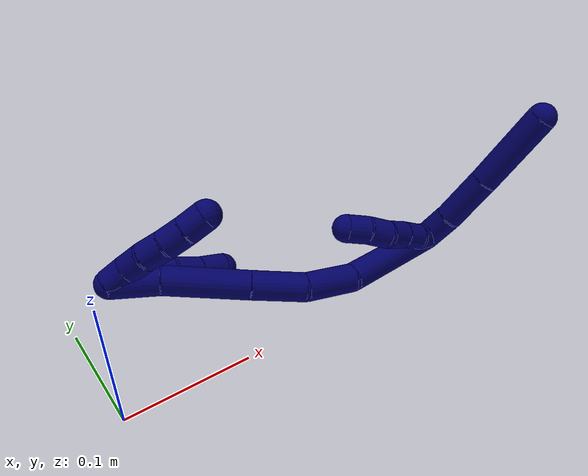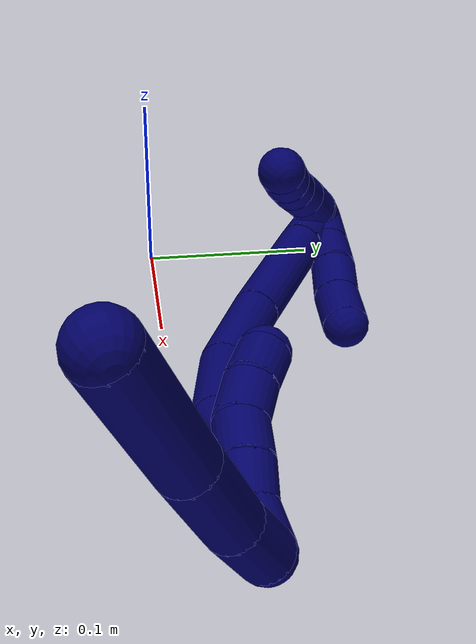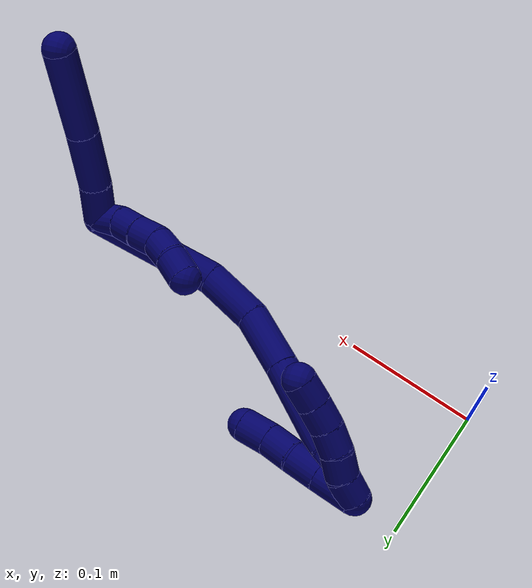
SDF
<sdf version="1.7">
 <world name="default">
  <model name="7">
   <static>0</static>
   <link name="7">
    <collision name="collision-cylinder-e_1_2_8">
     <pose>0.012578 -0.009112 0.001066 1.45431 0.940625 0.849601</pose>
     <geometry><cylinder><radius>0.0125</radius><length>0.031136</length></cylinder></geometry>
     <surface>
      <friction><ode><mu>1.16</mu><mu2>1.16</mu2><slip1>0</slip1><slip2>0</slip2></ode></friction>
      <contact><ode><kp>1e+06</kp><kd>1</kd><max_vel>0</max_vel><min_depth>0.001</min_depth></ode></contact>
     </surface>
    </collision>
    <visual name="visual-cylinder-e_1_2_8">
     <pose>0.012578 -0.009112 0.001066 1.45431 0.940625 0.849601</pose>
     <geometry><cylinder><radius>0.0125</radius><length>0.031136</length></cylinder></geometry>
     <material><ambient>0.003922 0 0.403922 1</ambient></material>
    </visual>
    <collision name="collision-cylinder-e_2_8_9">
     <pose>0.042849 -0.033729 0.00466 1.4092 0.8447 0.729906</pose>
     <geometry><cylinder><radius>0.0125</radius><length>0.047323</length></cylinder></geometry>
     <surface>
      <friction><ode><mu>1.16</mu><mu2>1.16</mu2><slip1>0</slip1><slip2>0</slip2></ode></friction>
      <contact><ode><kp>1e+06</kp><kd>1</kd><max_vel>0</max_vel><min_depth>0.001</min_depth></ode></contact>
     </surface>
    </collision>
    <visual name="visual-cylinder-e_2_8_9">
     <pose>0.042849 -0.033729 0.00466 1.4092 0.8447 0.729906</pose>
     <geometry><cylinder><radius>0.0125</radius><length>0.047323</length></cylinder></geometry>
     <material><ambient>0.003922 0 0.403922 1</ambient></material>
    </visual>
    <collision name="collision-cylinder-e_3_9_6">
     <pose>0.086575 -0.073394 0.011447 1.39629 0.815068 0.695094</pose>
     <geometry><cylinder><radius>0.0125</radius><length>0.071541</length></cylinder></geometry>
     <surface>
      <friction><ode><mu>1.16</mu><mu2>1.16</mu2><slip1>0</slip1><slip2>0</slip2></ode></friction>
      <contact><ode><kp>1e+06</kp><kd>1</kd><max_vel>0</max_vel><min_depth>0.001</min_depth></ode></contact>
     </surface>
    </collision>
    <visual name="visual-cylinder-e_3_9_6">
     <pose>0.086575 -0.073394 0.011447 1.39629 0.815068 0.695094</pose>
     <geometry><cylinder><radius>0.0125</radius><length>0.071541</length></cylinder></geometry>
     <material><ambient>0.003922 0 0.403922 1</ambient></material>
    </visual>
    <collision name="collision-cylinder-e_1_2_10">
     <pose>0.000664 -0.002021 -0.009771 2.93764 0.066496 0.628515</pose>
     <geometry><cylinder><radius>0.0125</radius><length>0.02</length></cylinder></geometry>
     <surface>
      <friction><ode><mu>1.16</mu><mu2>1.16</mu2><slip1>0</slip1><slip2>0</slip2></ode></friction>
      <contact><ode><kp>1e+06</kp><kd>1</kd><max_vel>0</max_vel><min_depth>0.001</min_depth></ode></contact>
     </surface>
    </collision>
    <visual name="visual-cylinder-e_1_2_10">
     <pose>0.000664 -0.002021 -0.009771 2.93764 0.066496 0.628515</pose>
     <geometry><cylinder><radius>0.0125</radius><length>0.02</length></cylinder></geometry>
     <material><ambient>0.003922 0 0.403922 1</ambient></material>
    </visual>
    <collision name="collision-cylinder-e_2_10_11">
     <pose>-0.000469 -0.007331 -0.028813 2.80069 -0.180788 -0.969421</pose>
     <geometry><cylinder><radius>0.0125</radius><length>0.02</length></cylinder></geometry>
     <surface>
      <friction><ode><mu>1.16</mu><mu2>1.16</mu2><slip1>0</slip1><slip2>0</slip2></ode></friction>
      <contact><ode><kp>1e+06</kp><kd>1</kd><max_vel>0</max_vel><min_depth>0.001</min_depth></ode></contact>
     </surface>
    </collision>
    <visual name="visual-cylinder-e_2_10_11">
     <pose>-0.000469 -0.007331 -0.028813 2.80069 -0.180788 -0.969421</pose>
     <geometry><cylinder><radius>0.0125</radius><length>0.02</length></cylinder></geometry>
     <material><ambient>0.003922 0 0.403922 1</ambient></material>
    </visual>
    <collision name="collision-cylinder-e_3_11_12">
     <pose>-0.003793 -0.013093 -0.047653 2.88865 -0.153183 -1.08604</pose>
     <geometry><cylinder><radius>0.0125</radius><length>0.02</length></cylinder></geometry>
     <surface>
      <friction><ode><mu>1.16</mu><mu2>1.16</mu2><slip1>0</slip1><slip2>0</slip2></ode></friction>
      <contact><ode><kp>1e+06</kp><kd>1</kd><max_vel>0</max_vel><min_depth>0.001</min_depth></ode></contact>
     </surface>
    </collision>
    <visual name="visual-cylinder-e_3_11_12">
     <pose>-0.003793 -0.013093 -0.047653 2.88865 -0.153183 -1.08604</pose>
     <geometry><cylinder><radius>0.0125</radius><length>0.02</length></cylinder></geometry>
     <material><ambient>0.003922 0 0.403922 1</ambient></material>
    </visual>
    <collision name="collision-cylinder-e_4_12_13">
     <pose>-0.009565 -0.019438 -0.065405 2.6997 -0.438542 -1.56293</pose>
     <geometry><cylinder><radius>0.0125</radius><length>0.02</length></cylinder></geometry>
     <surface>
      <friction><ode><mu>1.16</mu><mu2>1.16</mu2><slip1>0</slip1><slip2>0</slip2></ode></friction>
      <contact><ode><kp>1e+06</kp><kd>1</kd><max_vel>0</max_vel><min_depth>0.001</min_depth></ode></contact>
     </surface>
    </collision>
    <visual name="visual-cylinder-e_4_12_13">
     <pose>-0.009565 -0.019438 -0.065405 2.6997 -0.438542 -1.56293</pose>
     <geometry><cylinder><radius>0.0125</radius><length>0.02</length></cylinder></geometry>
     <material><ambient>0.003922 0 0.403922 1</ambient></material>
    </visual>
    <collision name="collision-cylinder-e_5_13_5">
     <pose>-0.019485 -0.025961 -0.081385 2.81381 -0.603305 -2.16454</pose>
     <geometry><cylinder><radius>0.0125</radius><length>0.02</length></cylinder></geometry>
     <surface>
      <friction><ode><mu>1.16</mu><mu2>1.16</mu2><slip1>0</slip1><slip2>0</slip2></ode></friction>
      <contact><ode><kp>1e+06</kp><kd>1</kd><max_vel>0</max_vel><min_depth>0.001</min_depth></ode></contact>
     </surface>
    </collision>
    <visual name="visual-cylinder-e_5_13_5">
     <pose>-0.019485 -0.025961 -0.081385 2.81381 -0.603305 -2.16454</pose>
     <geometry><cylinder><radius>0.0125</radius><length>0.02</length></cylinder></geometry>
     <material><ambient>0.003922 0 0.403922 1</ambient></material>
    </visual>
    <collision name="collision-cylinder-e_1_2_14">
     <pose>-0.011606 0.007094 -0.046825 -2.99123 -0.240324 2.02609</pose>
     <geometry><cylinder><radius>0.0125</radius><length>0.097521</length></cylinder></geometry>
     <surface>
      <friction><ode><mu>1.16</mu><mu2>1.16</mu2><slip1>0</slip1><slip2>0</slip2></ode></friction>
      <contact><ode><kp>1e+06</kp><kd>1</kd><max_vel>0</max_vel><min_depth>0.001</min_depth></ode></contact>
     </surface>
    </collision>
    <visual name="visual-cylinder-e_1_2_14">
     <pose>-0.011606 0.007094 -0.046825 -2.99123 -0.240324 2.02609</pose>
     <geometry><cylinder><radius>0.0125</radius><length>0.097521</length></cylinder></geometry>
     <material><ambient>0.003922 0 0.403922 1</ambient></material>
    </visual>
    <collision name="collision-cylinder-e_2_14_15">
     <pose>-0.033024 0.012973 -0.113492 3.08044 -0.458532 -2.88093</pose>
     <geometry><cylinder><radius>0.0125</radius><length>0.044338</length></cylinder></geometry>
     <surface>
      <friction><ode><mu>1.16</mu><mu2>1.16</mu2><slip1>0</slip1><slip2>0</slip2></ode></friction>
      <contact><ode><kp>1e+06</kp><kd>1</kd><max_vel>0</max_vel><min_depth>0.001</min_depth></ode></contact>
     </surface>
    </collision>
    <visual name="visual-cylinder-e_2_14_15">
     <pose>-0.033024 0.012973 -0.113492 3.08044 -0.458532 -2.88093</pose>
     <geometry><cylinder><radius>0.0125</radius><length>0.044338</length></cylinder></geometry>
     <material><ambient>0.003922 0 0.403922 1</ambient></material>
    </visual>
    <collision name="collision-cylinder-e_3_15_16">
     <pose>-0.05712 0.006192 -0.150861 2.8341 -0.660352 -2.29226</pose>
     <geometry><cylinder><radius>0.0125</radius><length>0.046571</length></cylinder></geometry>
     <surface>
      <friction><ode><mu>1.16</mu><mu2>1.16</mu2><slip1>0</slip1><slip2>0</slip2></ode></friction>
      <contact><ode><kp>1e+06</kp><kd>1</kd><max_vel>0</max_vel><min_depth>0.001</min_depth></ode></contact>
     </surface>
    </collision>
    <visual name="visual-cylinder-e_3_15_16">
     <pose>-0.05712 0.006192 -0.150861 2.8341 -0.660352 -2.29226</pose>
     <geometry><cylinder><radius>0.0125</radius><length>0.046571</length></cylinder></geometry>
     <material><ambient>0.003922 0 0.403922 1</ambient></material>
    </visual>
    <collision name="collision-cylinder-e_4_16_17">
     <pose>-0.094521 -0.00811 -0.194203 2.81528 -0.703486 -2.2983</pose>
     <geometry><cylinder><radius>0.0125</radius><length>0.071473</length></cylinder></geometry>
     <surface>
      <friction><ode><mu>1.16</mu><mu2>1.16</mu2><slip1>0</slip1><slip2>0</slip2></ode></friction>
      <contact><ode><kp>1e+06</kp><kd>1</kd><max_vel>0</max_vel><min_depth>0.001</min_depth></ode></contact>
     </surface>
    </collision>
    <visual name="visual-cylinder-e_4_16_17">
     <pose>-0.094521 -0.00811 -0.194203 2.81528 -0.703486 -2.2983</pose>
     <geometry><cylinder><radius>0.0125</radius><length>0.071473</length></cylinder></geometry>
     <material><ambient>0.003922 0 0.403922 1</ambient></material>
    </visual>
    <collision name="collision-cylinder-e_5_17_1">
     <pose>-0.131018 -0.01914 -0.23477 2.98734 -0.730676 -2.74289</pose>
     <geometry><cylinder><radius>0.0125</radius><length>0.040097</length></cylinder></geometry>
     <surface>
      <friction><ode><mu>1.16</mu><mu2>1.16</mu2><slip1>0</slip1><slip2>0</slip2></ode></friction>
      <contact><ode><kp>1e+06</kp><kd>1</kd><max_vel>0</max_vel><min_depth>0.001</min_depth></ode></contact>
     </surface>
    </collision>
    <visual name="visual-cylinder-e_5_17_1">
     <pose>-0.131018 -0.01914 -0.23477 2.98734 -0.730676 -2.74289</pose>
     <geometry><cylinder><radius>0.0125</radius><length>0.040097</length></cylinder></geometry>
     <material><ambient>0.003922 0 0.403922 1</ambient></material>
    </visual>
    <collision name="collision-cylinder-e_1_1_18">
     <pose>-0.140284 -0.020081 -0.234849 -0.091935 0.272229 -0.0126</pose>
     <geometry><cylinder><radius>0.0125</radius><length>0.030601</length></cylinder></geometry>
     <surface>
      <friction><ode><mu>1.16</mu><mu2>1.16</mu2><slip1>0</slip1><slip2>0</slip2></ode></friction>
      <contact><ode><kp>1e+06</kp><kd>1</kd><max_vel>0</max_vel><min_depth>0.001</min_depth></ode></contact>
     </surface>
    </collision>
    <visual name="visual-cylinder-e_1_1_18">
     <pose>-0.140284 -0.020081 -0.234849 -0.091935 0.272229 -0.0126</pose>
     <geometry><cylinder><radius>0.0125</radius><length>0.030601</length></cylinder></geometry>
     <material><ambient>0.003922 0 0.403922 1</ambient></material>
    </visual>
    <collision name="collision-cylinder-e_2_18_19">
     <pose>-0.132721 -0.017986 -0.208922 -0.065844 0.296781 -0.009847</pose>
     <geometry><cylinder><radius>0.0125</radius><length>0.023583</length></cylinder></geometry>
     <surface>
      <friction><ode><mu>1.16</mu><mu2>1.16</mu2><slip1>0</slip1><slip2>0</slip2></ode></friction>
      <contact><ode><kp>1e+06</kp><kd>1</kd><max_vel>0</max_vel><min_depth>0.001</min_depth></ode></contact>
     </surface>
    </collision>
    <visual name="visual-cylinder-e_2_18_19">
     <pose>-0.132721 -0.017986 -0.208922 -0.065844 0.296781 -0.009847</pose>
     <geometry><cylinder><radius>0.0125</radius><length>0.023583</length></cylinder></geometry>
     <material><ambient>0.003922 0 0.403922 1</ambient></material>
    </visual>
    <collision name="collision-cylinder-e_3_19_20">
     <pose>-0.126286 -0.014575 -0.18711 -0.247541 0.267672 -0.033497</pose>
     <geometry><cylinder><radius>0.0125</radius><length>0.022589</length></cylinder></geometry>
     <surface>
      <friction><ode><mu>1.16</mu><mu2>1.16</mu2><slip1>0</slip1><slip2>0</slip2></ode></friction>
      <contact><ode><kp>1e+06</kp><kd>1</kd><max_vel>0</max_vel><min_depth>0.001</min_depth></ode></contact>
     </surface>
    </collision>
    <visual name="visual-cylinder-e_3_19_20">
     <pose>-0.126286 -0.014575 -0.18711 -0.247541 0.267672 -0.033497</pose>
     <geometry><cylinder><radius>0.0125</radius><length>0.022589</length></cylinder></geometry>
     <material><ambient>0.003922 0 0.403922 1</ambient></material>
    </visual>
    <collision name="collision-cylinder-e_4_20_4">
     <pose>-0.121058 -0.010422 -0.165252 -0.130603 0.194137 -0.012735</pose>
     <geometry><cylinder><radius>0.0125</radius><length>0.023226</length></cylinder></geometry>
     <surface>
      <friction><ode><mu>1.16</mu><mu2>1.16</mu2><slip1>0</slip1><slip2>0</slip2></ode></friction>
      <contact><ode><kp>1e+06</kp><kd>1</kd><max_vel>0</max_vel><min_depth>0.001</min_depth></ode></contact>
     </surface>
    </collision>
    <visual name="visual-cylinder-e_4_20_4">
     <pose>-0.121058 -0.010422 -0.165252 -0.130603 0.194137 -0.012735</pose>
     <geometry><cylinder><radius>0.0125</radius><length>0.023226</length></cylinder></geometry>
     <material><ambient>0.003922 0 0.403922 1</ambient></material>
    </visual>
    <collision name="collision-cylinder-e_1_1_21">
     <pose>-0.137246 -0.026367 -0.244572 0.783539 0.796815 0.34434</pose>
     <geometry><cylinder><radius>0.0125</radius><length>0.02</length></cylinder></geometry>
     <surface>
      <friction><ode><mu>1.16</mu><mu2>1.16</mu2><slip1>0</slip1><slip2>0</slip2></ode></friction>
      <contact><ode><kp>1e+06</kp><kd>1</kd><max_vel>0</max_vel><min_depth>0.001</min_depth></ode></contact>
     </surface>
    </collision>
    <visual name="visual-cylinder-e_1_1_21">
     <pose>-0.137246 -0.026367 -0.244572 0.783539 0.796815 0.34434</pose>
     <geometry><cylinder><radius>0.0125</radius><length>0.02</length></cylinder></geometry>
     <material><ambient>0.003922 0 0.403922 1</ambient></material>
    </visual>
    <collision name="collision-cylinder-e_2_21_22">
     <pose>-0.121655 -0.03575 -0.236625 0.97831 1.00473 0.569004</pose>
     <geometry><cylinder><radius>0.0125</radius><length>0.02</length></cylinder></geometry>
     <surface>
      <friction><ode><mu>1.16</mu><mu2>1.16</mu2><slip1>0</slip1><slip2>0</slip2></ode></friction>
      <contact><ode><kp>1e+06</kp><kd>1</kd><max_vel>0</max_vel><min_depth>0.001</min_depth></ode></contact>
     </surface>
    </collision>
    <visual name="visual-cylinder-e_2_21_22">
     <pose>-0.121655 -0.03575 -0.236625 0.97831 1.00473 0.569004</pose>
     <geometry><cylinder><radius>0.0125</radius><length>0.02</length></cylinder></geometry>
     <material><ambient>0.003922 0 0.403922 1</ambient></material>
    </visual>
    <collision name="collision-cylinder-e_3_22_23">
     <pose>-0.105213 -0.043977 -0.228973 0.681537 0.927658 0.351111</pose>
     <geometry><cylinder><radius>0.0125</radius><length>0.02</length></cylinder></geometry>
     <surface>
      <friction><ode><mu>1.16</mu><mu2>1.16</mu2><slip1>0</slip1><slip2>0</slip2></ode></friction>
      <contact><ode><kp>1e+06</kp><kd>1</kd><max_vel>0</max_vel><min_depth>0.001</min_depth></ode></contact>
     </surface>
    </collision>
    <visual name="visual-cylinder-e_3_22_23">
     <pose>-0.105213 -0.043977 -0.228973 0.681537 0.927658 0.351111</pose>
     <geometry><cylinder><radius>0.0125</radius><length>0.02</length></cylinder></geometry>
     <material><ambient>0.003922 0 0.403922 1</ambient></material>
    </visual>
    <collision name="collision-cylinder-e_4_23_24">
     <pose>-0.090012 -0.052033 -0.218849 0.664 0.803564 0.290906</pose>
     <geometry><cylinder><radius>0.0125</radius><length>0.02</length></cylinder></geometry>
     <surface>
      <friction><ode><mu>1.16</mu><mu2>1.16</mu2><slip1>0</slip1><slip2>0</slip2></ode></friction>
      <contact><ode><kp>1e+06</kp><kd>1</kd><max_vel>0</max_vel><min_depth>0.001</min_depth></ode></contact>
     </surface>
    </collision>
    <visual name="visual-cylinder-e_4_23_24">
     <pose>-0.090012 -0.052033 -0.218849 0.664 0.803564 0.290906</pose>
     <geometry><cylinder><radius>0.0125</radius><length>0.02</length></cylinder></geometry>
     <material><ambient>0.003922 0 0.403922 1</ambient></material>
    </visual>
    <collision name="collision-cylinder-e_5_24_3">
     <pose>-0.075951 -0.061045 -0.20786 0.708727 0.756318 0.291882</pose>
     <geometry><cylinder><radius>0.0125</radius><length>0.02</length></cylinder></geometry>
     <surface>
      <friction><ode><mu>1.16</mu><mu2>1.16</mu2><slip1>0</slip1><slip2>0</slip2></ode></friction>
      <contact><ode><kp>1e+06</kp><kd>1</kd><max_vel>0</max_vel><min_depth>0.001</min_depth></ode></contact>
     </surface>
    </collision>
    <visual name="visual-cylinder-e_5_24_3">
     <pose>-0.075951 -0.061045 -0.20786 0.708727 0.756318 0.291882</pose>
     <geometry><cylinder><radius>0.0125</radius><length>0.02</length></cylinder></geometry>
     <material><ambient>0.003922 0 0.403922 1</ambient></material>
    </visual>
    <collision name="collision-sphere-3">
     <pose>-0.069089 -0.065779 -0.202338 0 -0 0</pose>
     <geometry><sphere><radius>0.0125</radius></sphere></geometry>
     <surface>
      <friction><ode><mu>1.16</mu><mu2>1.16</mu2><slip1>0</slip1><slip2>0</slip2></ode></friction>
      <contact><ode><kp>1e+06</kp><kd>1</kd><max_vel>0</max_vel><min_depth>0.001</min_depth></ode></contact>
     </surface>
    </collision>
    <visual name="visual-sphere-3">
     <pose>-0.069089 -0.065779 -0.202338 0 -0 0</pose>
     <geometry><sphere><radius>0.0125</radius></sphere></geometry>
     <material><ambient>0.003922 0 0.403922 1</ambient></material>
    </visual>
    <collision name="collision-sphere-24">
     <pose>-0.082814 -0.05631 -0.213382 0 -0 0</pose>
     <geometry><sphere><radius>0.0125</radius></sphere></geometry>
     <surface>
      <friction><ode><mu>1.16</mu><mu2>1.16</mu2><slip1>0</slip1><slip2>0</slip2></ode></friction>
      <contact><ode><kp>1e+06</kp><kd>1</kd><max_vel>0</max_vel><min_depth>0.001</min_depth></ode></contact>
     </surface>
    </collision>
    <visual name="visual-sphere-24">
     <pose>-0.082814 -0.05631 -0.213382 0 -0 0</pose>
     <geometry><sphere><radius>0.0125</radius></sphere></geometry>
     <material><ambient>0.003922 0 0.403922 1</ambient></material>
    </visual>
    <collision name="collision-sphere-23">
     <pose>-0.09721 -0.047755 -0.224316 0 -0 0</pose>
     <geometry><sphere><radius>0.0125</radius></sphere></geometry>
     <surface>
      <friction><ode><mu>1.16</mu><mu2>1.16</mu2><slip1>0</slip1><slip2>0</slip2></ode></friction>
      <contact><ode><kp>1e+06</kp><kd>1</kd><max_vel>0</max_vel><min_depth>0.001</min_depth></ode></contact>
     </surface>
    </collision>
    <visual name="visual-sphere-23">
     <pose>-0.09721 -0.047755 -0.224316 0 -0 0</pose>
     <geometry><sphere><radius>0.0125</radius></sphere></geometry>
     <material><ambient>0.003922 0 0.403922 1</ambient></material>
    </visual>
    <collision name="collision-sphere-22">
     <pose>-0.113215 -0.040199 -0.23363 0 -0 0</pose>
     <geometry><sphere><radius>0.0125</radius></sphere></geometry>
     <surface>
      <friction><ode><mu>1.16</mu><mu2>1.16</mu2><slip1>0</slip1><slip2>0</slip2></ode></friction>
      <contact><ode><kp>1e+06</kp><kd>1</kd><max_vel>0</max_vel><min_depth>0.001</min_depth></ode></contact>
     </surface>
    </collision>
    <visual name="visual-sphere-22">
     <pose>-0.113215 -0.040199 -0.23363 0 -0 0</pose>
     <geometry><sphere><radius>0.0125</radius></sphere></geometry>
     <material><ambient>0.003922 0 0.403922 1</ambient></material>
    </visual>
    <collision name="collision-sphere-21">
     <pose>-0.130095 -0.031301 -0.23962 0 -0 0</pose>
     <geometry><sphere><radius>0.0125</radius></sphere></geometry>
     <surface>
      <friction><ode><mu>1.16</mu><mu2>1.16</mu2><slip1>0</slip1><slip2>0</slip2></ode></friction>
      <contact><ode><kp>1e+06</kp><kd>1</kd><max_vel>0</max_vel><min_depth>0.001</min_depth></ode></contact>
     </surface>
    </collision>
    <visual name="visual-sphere-21">
     <pose>-0.130095 -0.031301 -0.23962 0 -0 0</pose>
     <geometry><sphere><radius>0.0125</radius></sphere></geometry>
     <material><ambient>0.003922 0 0.403922 1</ambient></material>
    </visual>
    <collision name="collision-sphere-4">
     <pose>-0.118818 -0.008938 -0.153954 0 -0 0</pose>
     <geometry><sphere><radius>0.0125</radius></sphere></geometry>
     <surface>
      <friction><ode><mu>1.16</mu><mu2>1.16</mu2><slip1>0</slip1><slip2>0</slip2></ode></friction>
      <contact><ode><kp>1e+06</kp><kd>1</kd><max_vel>0</max_vel><min_depth>0.001</min_depth></ode></contact>
     </surface>
    </collision>
    <visual name="visual-sphere-4">
     <pose>-0.118818 -0.008938 -0.153954 0 -0 0</pose>
     <geometry><sphere><radius>0.0125</radius></sphere></geometry>
     <material><ambient>0.003922 0 0.403922 1</ambient></material>
    </visual>
    <collision name="collision-sphere-20">
     <pose>-0.123298 -0.011906 -0.17655 0 -0 0</pose>
     <geometry><sphere><radius>0.0125</radius></sphere></geometry>
     <surface>
      <friction><ode><mu>1.16</mu><mu2>1.16</mu2><slip1>0</slip1><slip2>0</slip2></ode></friction>
      <contact><ode><kp>1e+06</kp><kd>1</kd><max_vel>0</max_vel><min_depth>0.001</min_depth></ode></contact>
     </surface>
    </collision>
    <visual name="visual-sphere-20">
     <pose>-0.123298 -0.011906 -0.17655 0 -0 0</pose>
     <geometry><sphere><radius>0.0125</radius></sphere></geometry>
     <material><ambient>0.003922 0 0.403922 1</ambient></material>
    </visual>
    <collision name="collision-sphere-11">
     <pose>-0.002267 -0.01062 -0.038084 0 -0 0</pose>
     <geometry><sphere><radius>0.0125</radius></sphere></geometry>
     <surface>
      <friction><ode><mu>1.16</mu><mu2>1.16</mu2><slip1>0</slip1><slip2>0</slip2></ode></friction>
      <contact><ode><kp>1e+06</kp><kd>1</kd><max_vel>0</max_vel><min_depth>0.001</min_depth></ode></contact>
     </surface>
    </collision>
    <visual name="visual-sphere-11">
     <pose>-0.002267 -0.01062 -0.038084 0 -0 0</pose>
     <geometry><sphere><radius>0.0125</radius></sphere></geometry>
     <material><ambient>0.003922 0 0.403922 1</ambient></material>
    </visual>
    <collision name="collision-sphere-10">
     <pose>0.001329 -0.004042 -0.019542 0 -0 0</pose>
     <geometry><sphere><radius>0.0125</radius></sphere></geometry>
     <surface>
      <friction><ode><mu>1.16</mu><mu2>1.16</mu2><slip1>0</slip1><slip2>0</slip2></ode></friction>
      <contact><ode><kp>1e+06</kp><kd>1</kd><max_vel>0</max_vel><min_depth>0.001</min_depth></ode></contact>
     </surface>
    </collision>
    <visual name="visual-sphere-10">
     <pose>0.001329 -0.004042 -0.019542 0 -0 0</pose>
     <geometry><sphere><radius>0.0125</radius></sphere></geometry>
     <material><ambient>0.003922 0 0.403922 1</ambient></material>
    </visual>
    <collision name="collision-sphere-6">
     <pose>0.112608 -0.097554 0.015706 0 -0 0</pose>
     <geometry><sphere><radius>0.0125</radius></sphere></geometry>
     <surface>
      <friction><ode><mu>1.16</mu><mu2>1.16</mu2><slip1>0</slip1><slip2>0</slip2></ode></friction>
      <contact><ode><kp>1e+06</kp><kd>1</kd><max_vel>0</max_vel><min_depth>0.001</min_depth></ode></contact>
     </surface>
    </collision>
    <visual name="visual-sphere-6">
     <pose>0.112608 -0.097554 0.015706 0 -0 0</pose>
     <geometry><sphere><radius>0.0125</radius></sphere></geometry>
     <material><ambient>0.003922 0 0.403922 1</ambient></material>
    </visual>
    <collision name="collision-sphere-9">
     <pose>0.060542 -0.049235 0.007188 0 -0 0</pose>
     <geometry><sphere><radius>0.0125</radius></sphere></geometry>
     <surface>
      <friction><ode><mu>1.16</mu><mu2>1.16</mu2><slip1>0</slip1><slip2>0</slip2></ode></friction>
      <contact><ode><kp>1e+06</kp><kd>1</kd><max_vel>0</max_vel><min_depth>0.001</min_depth></ode></contact>
     </surface>
    </collision>
    <visual name="visual-sphere-9">
     <pose>0.060542 -0.049235 0.007188 0 -0 0</pose>
     <geometry><sphere><radius>0.0125</radius></sphere></geometry>
     <material><ambient>0.003922 0 0.403922 1</ambient></material>
    </visual>
    <collision name="collision-sphere-2">
     <geometry><sphere><radius>0.0125</radius></sphere></geometry>
     <surface>
      <friction><ode><mu>1.16</mu><mu2>1.16</mu2><slip1>0</slip1><slip2>0</slip2></ode></friction>
      <contact><ode><kp>1e+06</kp><kd>1</kd><max_vel>0</max_vel><min_depth>0.001</min_depth></ode></contact>
     </surface>
    </collision>
    <visual name="visual-sphere-2">
     <geometry><sphere><radius>0.0125</radius></sphere></geometry>
     <material><ambient>0.003922 0 0.403922 1</ambient></material>
    </visual>
    <collision name="collision-sphere-19">
     <pose>-0.129273 -0.017244 -0.19767 0 -0 0</pose>
     <geometry><sphere><radius>0.0125</radius></sphere></geometry>
     <surface>
      <friction><ode><mu>1.16</mu><mu2>1.16</mu2><slip1>0</slip1><slip2>0</slip2></ode></friction>
      <contact><ode><kp>1e+06</kp><kd>1</kd><max_vel>0</max_vel><min_depth>0.001</min_depth></ode></contact>
     </surface>
    </collision>
    <visual name="visual-sphere-19">
     <pose>-0.129273 -0.017244 -0.19767 0 -0 0</pose>
     <geometry><sphere><radius>0.0125</radius></sphere></geometry>
     <material><ambient>0.003922 0 0.403922 1</ambient></material>
    </visual>
    <collision name="collision-sphere-8">
     <pose>0.025155 -0.018223 0.002132 0 -0 0</pose>
     <geometry><sphere><radius>0.0125</radius></sphere></geometry>
     <surface>
      <friction><ode><mu>1.16</mu><mu2>1.16</mu2><slip1>0</slip1><slip2>0</slip2></ode></friction>
      <contact><ode><kp>1e+06</kp><kd>1</kd><max_vel>0</max_vel><min_depth>0.001</min_depth></ode></contact>
     </surface>
    </collision>
    <visual name="visual-sphere-8">
     <pose>0.025155 -0.018223 0.002132 0 -0 0</pose>
     <geometry><sphere><radius>0.0125</radius></sphere></geometry>
     <material><ambient>0.003922 0 0.403922 1</ambient></material>
    </visual>
    <collision name="collision-sphere-12">
     <pose>-0.005319 -0.015566 -0.057221 0 -0 0</pose>
     <geometry><sphere><radius>0.0125</radius></sphere></geometry>
     <surface>
      <friction><ode><mu>1.16</mu><mu2>1.16</mu2><slip1>0</slip1><slip2>0</slip2></ode></friction>
      <contact><ode><kp>1e+06</kp><kd>1</kd><max_vel>0</max_vel><min_depth>0.001</min_depth></ode></contact>
     </surface>
    </collision>
    <visual name="visual-sphere-12">
     <pose>-0.005319 -0.015566 -0.057221 0 -0 0</pose>
     <geometry><sphere><radius>0.0125</radius></sphere></geometry>
     <material><ambient>0.003922 0 0.403922 1</ambient></material>
    </visual>
    <collision name="collision-sphere-13">
     <pose>-0.013811 -0.02331 -0.073589 0 -0 0</pose>
     <geometry><sphere><radius>0.0125</radius></sphere></geometry>
     <surface>
      <friction><ode><mu>1.16</mu><mu2>1.16</mu2><slip1>0</slip1><slip2>0</slip2></ode></friction>
      <contact><ode><kp>1e+06</kp><kd>1</kd><max_vel>0</max_vel><min_depth>0.001</min_depth></ode></contact>
     </surface>
    </collision>
    <visual name="visual-sphere-13">
     <pose>-0.013811 -0.02331 -0.073589 0 -0 0</pose>
     <geometry><sphere><radius>0.0125</radius></sphere></geometry>
     <material><ambient>0.003922 0 0.403922 1</ambient></material>
    </visual>
    <collision name="collision-sphere-5">
     <pose>-0.025159 -0.028612 -0.089181 0 -0 0</pose>
     <geometry><sphere><radius>0.0125</radius></sphere></geometry>
     <surface>
      <friction><ode><mu>1.16</mu><mu2>1.16</mu2><slip1>0</slip1><slip2>0</slip2></ode></friction>
      <contact><ode><kp>1e+06</kp><kd>1</kd><max_vel>0</max_vel><min_depth>0.001</min_depth></ode></contact>
     </surface>
    </collision>
    <visual name="visual-sphere-5">
     <pose>-0.025159 -0.028612 -0.089181 0 -0 0</pose>
     <geometry><sphere><radius>0.0125</radius></sphere></geometry>
     <material><ambient>0.003922 0 0.403922 1</ambient></material>
    </visual>
    <collision name="collision-sphere-14">
     <pose>-0.023212 0.014188 -0.09365 0 -0 0</pose>
     <geometry><sphere><radius>0.0125</radius></sphere></geometry>
     <surface>
      <friction><ode><mu>1.16</mu><mu2>1.16</mu2><slip1>0</slip1><slip2>0</slip2></ode></friction>
      <contact><ode><kp>1e+06</kp><kd>1</kd><max_vel>0</max_vel><min_depth>0.001</min_depth></ode></contact>
     </surface>
    </collision>
    <visual name="visual-sphere-14">
     <pose>-0.023212 0.014188 -0.09365 0 -0 0</pose>
     <geometry><sphere><radius>0.0125</radius></sphere></geometry>
     <material><ambient>0.003922 0 0.403922 1</ambient></material>
    </visual>
    <collision name="collision-sphere-15">
     <pose>-0.042837 0.011758 -0.133333 0 -0 0</pose>
     <geometry><sphere><radius>0.0125</radius></sphere></geometry>
     <surface>
      <friction><ode><mu>1.16</mu><mu2>1.16</mu2><slip1>0</slip1><slip2>0</slip2></ode></friction>
      <contact><ode><kp>1e+06</kp><kd>1</kd><max_vel>0</max_vel><min_depth>0.001</min_depth></ode></contact>
     </surface>
    </collision>
    <visual name="visual-sphere-15">
     <pose>-0.042837 0.011758 -0.133333 0 -0 0</pose>
     <geometry><sphere><radius>0.0125</radius></sphere></geometry>
     <material><ambient>0.003922 0 0.403922 1</ambient></material>
    </visual>
    <collision name="collision-sphere-16">
     <pose>-0.071403 0.000626 -0.168388 0 -0 0</pose>
     <geometry><sphere><radius>0.0125</radius></sphere></geometry>
     <surface>
      <friction><ode><mu>1.16</mu><mu2>1.16</mu2><slip1>0</slip1><slip2>0</slip2></ode></friction>
      <contact><ode><kp>1e+06</kp><kd>1</kd><max_vel>0</max_vel><min_depth>0.001</min_depth></ode></contact>
     </surface>
    </collision>
    <visual name="visual-sphere-16">
     <pose>-0.071403 0.000626 -0.168388 0 -0 0</pose>
     <geometry><sphere><radius>0.0125</radius></sphere></geometry>
     <material><ambient>0.003922 0 0.403922 1</ambient></material>
    </visual>
    <collision name="collision-sphere-17">
     <pose>-0.117638 -0.016846 -0.220017 0 -0 0</pose>
     <geometry><sphere><radius>0.0125</radius></sphere></geometry>
     <surface>
      <friction><ode><mu>1.16</mu><mu2>1.16</mu2><slip1>0</slip1><slip2>0</slip2></ode></friction>
      <contact><ode><kp>1e+06</kp><kd>1</kd><max_vel>0</max_vel><min_depth>0.001</min_depth></ode></contact>
     </surface>
    </collision>
    <visual name="visual-sphere-17">
     <pose>-0.117638 -0.016846 -0.220017 0 -0 0</pose>
     <geometry><sphere><radius>0.0125</radius></sphere></geometry>
     <material><ambient>0.003922 0 0.403922 1</ambient></material>
    </visual>
    <collision name="collision-sphere-1">
     <pose>-0.144398 -0.021434 -0.249524 0 -0 0</pose>
     <geometry><sphere><radius>0.0125</radius></sphere></geometry>
     <surface>
      <friction><ode><mu>1.16</mu><mu2>1.16</mu2><slip1>0</slip1><slip2>0</slip2></ode></friction>
      <contact><ode><kp>1e+06</kp><kd>1</kd><max_vel>0</max_vel><min_depth>0.001</min_depth></ode></contact>
     </surface>
    </collision>
    <visual name="visual-sphere-1">
     <pose>-0.144398 -0.021434 -0.249524 0 -0 0</pose>
     <geometry><sphere><radius>0.0125</radius></sphere></geometry>
     <material><ambient>0.003922 0 0.403922 1</ambient></material>
    </visual>
    <collision name="collision-sphere-18">
     <pose>-0.13617 -0.018728 -0.220174 0 -0 0</pose>
     <geometry><sphere><radius>0.0125</radius></sphere></geometry>
     <surface>
      <friction><ode><mu>1.16</mu><mu2>1.16</mu2><slip1>0</slip1><slip2>0</slip2></ode></friction>
      <contact><ode><kp>1e+06</kp><kd>1</kd><max_vel>0</max_vel><min_depth>0.001</min_depth></ode></contact>
     </surface>
    </collision>
    <visual name="visual-sphere-18">
     <pose>-0.13617 -0.018728 -0.220174 0 -0 0</pose>
     <geometry><sphere><radius>0.0125</radius></sphere></geometry>
     <material><ambient>0.003922 0 0.403922 1</ambient></material>
    </visual>
    <inertial>
     <pose>-0.043992 -0.01903 -0.115229 0 -0 0</pose>
     <mass>0.75</mass>
     <inertia><ixx>3.4e-05</ixx><ixy>0</ixy><ixz>0</ixz><iyy>0.000177</iyy><iyz>0</iyz><izz>3.6e-05</izz></inertia>
    </inertial>
   </link>
   <pose>0.313587 0.026582 0.011508 -1.82042 -0.368201 -1.22991</pose>
  </model>
 </world>
</sdf>
